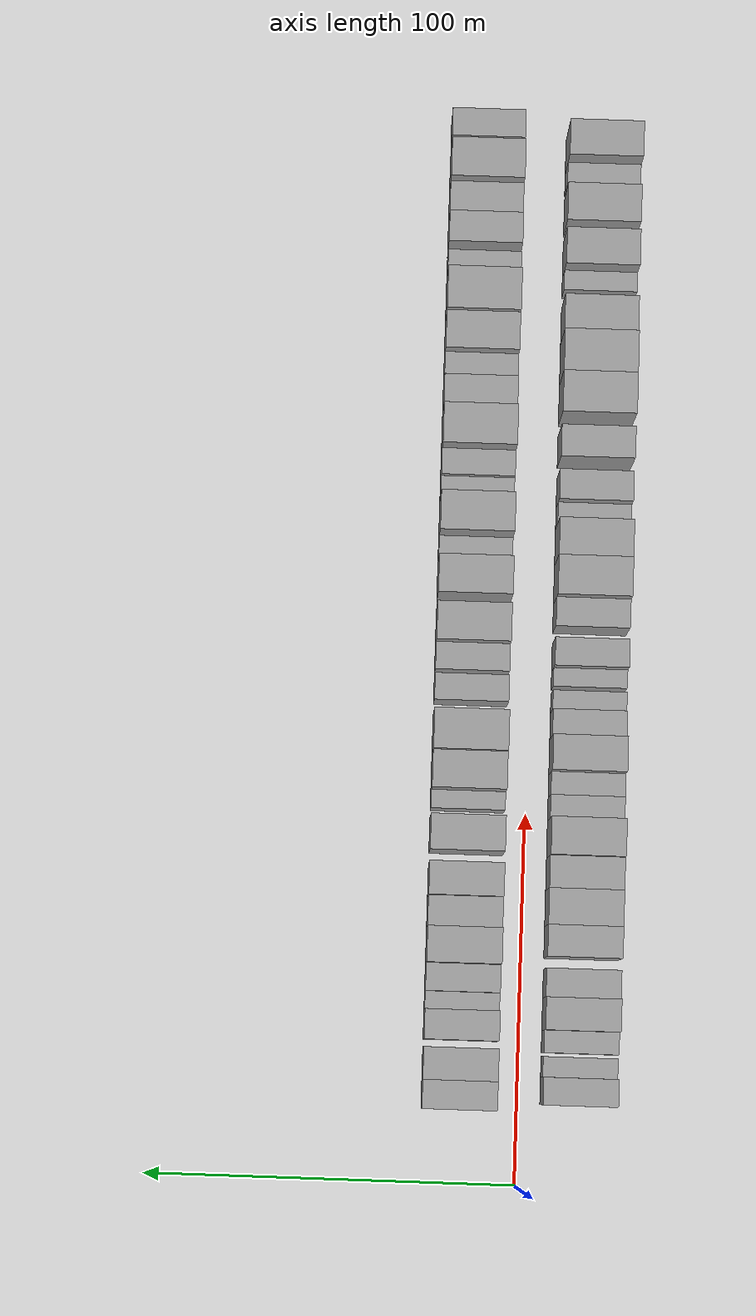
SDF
<sdf version="1.6">
 <world name="default">
  <scene>
   <sky><clouds><speed>12</speed></clouds></sky>
   <ambient>0.4 0.4 0.4 1</ambient>
   <background>0.7 0.7 0.7 1</background>
   <shadows>1</shadows>
  </scene>
  <gravity>0 0 -9.8066</gravity>
  <magnetic_field>6e-06 2.3e-05 -4.2e-05</magnetic_field>
  <physics default="0" name="default_physics" type="ode">
   <ode>
    <solver>
     <type>quick</type>
     <iters>10</iters>
     <sor>1.0</sor>
     <use_dynamic_moi_rescaling>0</use_dynamic_moi_rescaling>
    </solver>
    <constraints>
     <cfm>0</cfm>
     <erp>0.2</erp>
     <contact_max_correcting_vel>100</contact_max_correcting_vel>
     <contact_surface_layer>0.001</contact_surface_layer>
    </constraints>
   </ode>
   <max_step_size>0.004</max_step_size>
   <real_time_factor>1</real_time_factor>
   <real_time_update_rate>250</real_time_update_rate>
  </physics>
  <light name="sun" type="directional">
   <pose>0 0 10 0 0 0</pose>
   <diffuse>0.8 0.8 0.8 1</diffuse>
   <specular>0.2 0.2 0.2 1</specular>
   <attenuation>
    <range>1000</range>
    <constant>0.9</constant>
    <linear>0.01</linear>
    <quadratic>0.001</quadratic>
   </attenuation>
   <direction>-0.5 0.1 -0.9</direction>
  </light>
  <model name="building_1">
   <static>1</static>
   <pose>23.8526 16.0000 0 0.000000 0.000000 1.570796</pose>
   <link name="link">
    <pose>0 0 9.00 0 0 0</pose>
    <collision name="collision"><geometry><box><size>20.0000 7.7052 18.0000</size></box></geometry></collision>
    <visual name="visual">
     <cast_shadows>0</cast_shadows>
     <geometry><box><size>20.0000 7.7052 18.0000</size></box></geometry>
     <material>
      <script>
       <uri>model://grey_wall/materials/scripts</uri>
       <uri>model://grey_wall/materials/textures</uri>
       <name>vrc/grey_wall</name>
      </script>
     </material>
    </visual>
   </link>
  </model>
  <model name="building_2">
   <static>1</static>
   <pose>32.0333 16.0000 0 0.000000 0.000000 1.570796</pose>
   <link name="link">
    <pose>0 0 9.00 0 0 0</pose>
    <collision name="collision"><geometry><box><size>20.0000 8.6563 18.0000</size></box></geometry></collision>
    <visual name="visual">
     <cast_shadows>0</cast_shadows>
     <geometry><box><size>20.0000 8.6563 18.0000</size></box></geometry>
     <material>
      <script>
       <uri>model://grey_wall/materials/scripts</uri>
       <uri>model://grey_wall/materials/textures</uri>
       <name>vrc/grey_wall</name>
      </script>
     </material>
    </visual>
   </link>
  </model>
  <model name="building_3">
   <static>1</static>
   <pose>42.3882 16.0000 0 0.000000 0.000000 1.570796</pose>
   <link name="link">
    <pose>0 0 9.00 0 0 0</pose>
    <collision name="collision"><geometry><box><size>20.0000 8.0535 18.0000</size></box></geometry></collision>
    <visual name="visual">
     <cast_shadows>0</cast_shadows>
     <geometry><box><size>20.0000 8.0535 18.0000</size></box></geometry>
     <material>
      <script>
       <uri>model://grey_wall/materials/scripts</uri>
       <uri>model://grey_wall/materials/textures</uri>
       <name>vrc/grey_wall</name>
      </script>
     </material>
    </visual>
   </link>
  </model>
  <model name="building_4">
   <static>1</static>
   <pose>48.8194 16.0000 0 0.000000 0.000000 1.570796</pose>
   <link name="link">
    <pose>0 0 6.00 0 0 0</pose>
    <collision name="collision"><geometry><box><size>20.0000 4.8088 12.0000</size></box></geometry></collision>
    <visual name="visual">
     <cast_shadows>0</cast_shadows>
     <geometry><box><size>20.0000 4.8088 12.0000</size></box></geometry>
     <material>
      <script>
       <uri>model://grey_wall/materials/scripts</uri>
       <uri>model://grey_wall/materials/textures</uri>
       <name>vrc/grey_wall</name>
      </script>
     </material>
    </visual>
   </link>
  </model>
  <model name="building_5">
   <static>1</static>
   <pose>54.9611 16.0000 0 0.000000 0.000000 1.570796</pose>
   <link name="link">
    <pose>0 0 7.50 0 0 0</pose>
    <collision name="collision"><geometry><box><size>20.0000 7.4746 15.0000</size></box></geometry></collision>
    <visual name="visual">
     <cast_shadows>0</cast_shadows>
     <geometry><box><size>20.0000 7.4746 15.0000</size></box></geometry>
     <material>
      <script>
       <uri>model://grey_wall/materials/scripts</uri>
       <uri>model://grey_wall/materials/textures</uri>
       <name>vrc/grey_wall</name>
      </script>
     </material>
    </visual>
   </link>
  </model>
  <model name="building_6">
   <static>1</static>
   <pose>63.5316 16.0000 0 0.000000 0.000000 1.570796</pose>
   <link name="link">
    <pose>0 0 10.50 0 0 0</pose>
    <collision name="collision"><geometry><box><size>20.0000 9.6665 21.0000</size></box></geometry></collision>
    <visual name="visual">
     <cast_shadows>0</cast_shadows>
     <geometry><box><size>20.0000 9.6665 21.0000</size></box></geometry>
     <material>
      <script>
       <uri>model://grey_wall/materials/scripts</uri>
       <uri>model://grey_wall/materials/textures</uri>
       <name>vrc/grey_wall</name>
      </script>
     </material>
    </visual>
   </link>
  </model>
  <model name="building_7">
   <static>1</static>
   <pose>72.4871 16.0000 0 0.000000 0.000000 1.570796</pose>
   <link name="link">
    <pose>0 0 9.00 0 0 0</pose>
    <collision name="collision"><geometry><box><size>20.0000 8.2445 18.0000</size></box></geometry></collision>
    <visual name="visual">
     <cast_shadows>0</cast_shadows>
     <geometry><box><size>20.0000 8.2445 18.0000</size></box></geometry>
     <material>
      <script>
       <uri>model://grey_wall/materials/scripts</uri>
       <uri>model://grey_wall/materials/textures</uri>
       <name>vrc/grey_wall</name>
      </script>
     </material>
    </visual>
   </link>
  </model>
  <model name="building_8">
   <static>1</static>
   <pose>81.1194 16.0000 0 0.000000 0.000000 1.570796</pose>
   <link name="link">
    <pose>0 0 10.50 0 0 0</pose>
    <collision name="collision"><geometry><box><size>20.0000 9.0199 21.0000</size></box></geometry></collision>
    <visual name="visual">
     <cast_shadows>0</cast_shadows>
     <geometry><box><size>20.0000 9.0199 21.0000</size></box></geometry>
     <material>
      <script>
       <uri>model://grey_wall/materials/scripts</uri>
       <uri>model://grey_wall/materials/textures</uri>
       <name>vrc/grey_wall</name>
      </script>
     </material>
    </visual>
   </link>
  </model>
  <model name="building_9">
   <static>1</static>
   <pose>93.4221 16.0000 0 0.000000 0.000000 1.570796</pose>
   <link name="link">
    <pose>0 0 10.50 0 0 0</pose>
    <collision name="collision"><geometry><box><size>20.0000 9.5856 21.0000</size></box></geometry></collision>
    <visual name="visual">
     <cast_shadows>0</cast_shadows>
     <geometry><box><size>20.0000 9.5856 21.0000</size></box></geometry>
     <material>
      <script>
       <uri>model://grey_wall/materials/scripts</uri>
       <uri>model://grey_wall/materials/textures</uri>
       <name>vrc/grey_wall</name>
      </script>
     </material>
    </visual>
   </link>
  </model>
  <model name="building_10">
   <static>1</static>
   <pose>102.7035 16.0000 0 0.000000 0.000000 1.570796</pose>
   <link name="link">
    <pose>0 0 6.00 0 0 0</pose>
    <collision name="collision"><geometry><box><size>20.0000 4.9772 12.0000</size></box></geometry></collision>
    <visual name="visual">
     <cast_shadows>0</cast_shadows>
     <geometry><box><size>20.0000 4.9772 12.0000</size></box></geometry>
     <material>
      <script>
       <uri>model://grey_wall/materials/scripts</uri>
       <uri>model://grey_wall/materials/textures</uri>
       <name>vrc/grey_wall</name>
      </script>
     </material>
    </visual>
   </link>
  </model>
  <model name="building_11">
   <static>1</static>
   <pose>110.2626 16.0000 0 0.000000 0.000000 1.570796</pose>
   <link name="link">
    <pose>0 0 10.50 0 0 0</pose>
    <collision name="collision"><geometry><box><size>20.0000 10.1409 21.0000</size></box></geometry></collision>
    <visual name="visual">
     <cast_shadows>0</cast_shadows>
     <geometry><box><size>20.0000 10.1409 21.0000</size></box></geometry>
     <material>
      <script>
       <uri>model://grey_wall/materials/scripts</uri>
       <uri>model://grey_wall/materials/textures</uri>
       <name>vrc/grey_wall</name>
      </script>
     </material>
    </visual>
   </link>
  </model>
  <model name="building_12">
   <static>1</static>
   <pose>120.8121 16.0000 0 0.000000 0.000000 1.570796</pose>
   <link name="link">
    <pose>0 0 12.00 0 0 0</pose>
    <collision name="collision"><geometry><box><size>20.0000 10.9581 24.0000</size></box></geometry></collision>
    <visual name="visual">
     <cast_shadows>0</cast_shadows>
     <geometry><box><size>20.0000 10.9581 24.0000</size></box></geometry>
     <material>
      <script>
       <uri>model://grey_wall/materials/scripts</uri>
       <uri>model://grey_wall/materials/textures</uri>
       <name>vrc/grey_wall</name>
      </script>
     </material>
    </visual>
   </link>
  </model>
  <model name="building_13">
   <static>1</static>
   <pose>132.9128 16.0000 0 0.000000 0.000000 1.570796</pose>
   <link name="link">
    <pose>0 0 7.50 0 0 0</pose>
    <collision name="collision"><geometry><box><size>20.0000 7.2433 15.0000</size></box></geometry></collision>
    <visual name="visual">
     <cast_shadows>0</cast_shadows>
     <geometry><box><size>20.0000 7.2433 15.0000</size></box></geometry>
     <material>
      <script>
       <uri>model://grey_wall/materials/scripts</uri>
       <uri>model://grey_wall/materials/textures</uri>
       <name>vrc/grey_wall</name>
      </script>
     </material>
    </visual>
   </link>
  </model>
  <model name="building_14">
   <static>1</static>
   <pose>141.2536 16.0000 0 0.000000 0.000000 1.570796</pose>
   <link name="link">
    <pose>0 0 7.50 0 0 0</pose>
    <collision name="collision"><geometry><box><size>20.0000 7.4382 15.0000</size></box></geometry></collision>
    <visual name="visual">
     <cast_shadows>0</cast_shadows>
     <geometry><box><size>20.0000 7.4382 15.0000</size></box></geometry>
     <material>
      <script>
       <uri>model://grey_wall/materials/scripts</uri>
       <uri>model://grey_wall/materials/textures</uri>
       <name>vrc/grey_wall</name>
      </script>
     </material>
    </visual>
   </link>
  </model>
  <model name="building_15">
   <static>1</static>
   <pose>150.1657 16.0000 0 0.000000 0.000000 1.570796</pose>
   <link name="link">
    <pose>0 0 10.50 0 0 0</pose>
    <collision name="collision"><geometry><box><size>20.0000 10.3860 21.0000</size></box></geometry></collision>
    <visual name="visual">
     <cast_shadows>0</cast_shadows>
     <geometry><box><size>20.0000 10.3860 21.0000</size></box></geometry>
     <material>
      <script>
       <uri>model://grey_wall/materials/scripts</uri>
       <uri>model://grey_wall/materials/textures</uri>
       <name>vrc/grey_wall</name>
      </script>
     </material>
    </visual>
   </link>
  </model>
  <model name="building_16">
   <static>1</static>
   <pose>162.5402 16.0000 0 0.000000 0.000000 1.570796</pose>
   <link name="link">
    <pose>0 0 12.00 0 0 0</pose>
    <collision name="collision"><geometry><box><size>20.0000 10.3630 24.0000</size></box></geometry></collision>
    <visual name="visual">
     <cast_shadows>0</cast_shadows>
     <geometry><box><size>20.0000 10.3630 24.0000</size></box></geometry>
     <material>
      <script>
       <uri>model://grey_wall/materials/scripts</uri>
       <uri>model://grey_wall/materials/textures</uri>
       <name>vrc/grey_wall</name>
      </script>
     </material>
    </visual>
   </link>
  </model>
  <model name="building_17">
   <static>1</static>
   <pose>171.5231 16.0000 0 0.000000 0.000000 1.570796</pose>
   <link name="link">
    <pose>0 0 6.00 0 0 0</pose>
    <collision name="collision"><geometry><box><size>20.0000 5.6028 12.0000</size></box></geometry></collision>
    <visual name="visual">
     <cast_shadows>0</cast_shadows>
     <geometry><box><size>20.0000 5.6028 12.0000</size></box></geometry>
     <material>
      <script>
       <uri>model://grey_wall/materials/scripts</uri>
       <uri>model://grey_wall/materials/textures</uri>
       <name>vrc/grey_wall</name>
      </script>
     </material>
    </visual>
   </link>
  </model>
  <model name="building_18">
   <static>1</static>
   <pose>179.6809 16.0000 0 0.000000 0.000000 1.570796</pose>
   <link name="link">
    <pose>0 0 12.00 0 0 0</pose>
    <collision name="collision"><geometry><box><size>20.0000 10.7129 24.0000</size></box></geometry></collision>
    <visual name="visual">
     <cast_shadows>0</cast_shadows>
     <geometry><box><size>20.0000 10.7129 24.0000</size></box></geometry>
     <material>
      <script>
       <uri>model://grey_wall/materials/scripts</uri>
       <uri>model://grey_wall/materials/textures</uri>
       <name>vrc/grey_wall</name>
      </script>
     </material>
    </visual>
   </link>
  </model>
  <model name="building_19">
   <static>1</static>
   <pose>187.9034 16.0000 0 0.000000 0.000000 1.570796</pose>
   <link name="link">
    <pose>0 0 6.00 0 0 0</pose>
    <collision name="collision"><geometry><box><size>20.0000 5.7320 12.0000</size></box></geometry></collision>
    <visual name="visual">
     <cast_shadows>0</cast_shadows>
     <geometry><box><size>20.0000 5.7320 12.0000</size></box></geometry>
     <material>
      <script>
       <uri>model://grey_wall/materials/scripts</uri>
       <uri>model://grey_wall/materials/textures</uri>
       <name>vrc/grey_wall</name>
      </script>
     </material>
    </visual>
   </link>
  </model>
  <model name="building_20">
   <static>1</static>
   <pose>194.3433 16.0000 0 0.000000 0.000000 1.570796</pose>
   <link name="link">
    <pose>0 0 7.50 0 0 0</pose>
    <collision name="collision"><geometry><box><size>20.0000 7.1477 15.0000</size></box></geometry></collision>
    <visual name="visual">
     <cast_shadows>0</cast_shadows>
     <geometry><box><size>20.0000 7.1477 15.0000</size></box></geometry>
     <material>
      <script>
       <uri>model://grey_wall/materials/scripts</uri>
       <uri>model://grey_wall/materials/textures</uri>
       <name>vrc/grey_wall</name>
      </script>
     </material>
    </visual>
   </link>
  </model>
  <model name="building_21">
   <static>1</static>
   <pose>203.4405 16.0000 0 0.000000 0.000000 1.570796</pose>
   <link name="link">
    <pose>0 0 12.00 0 0 0</pose>
    <collision name="collision"><geometry><box><size>20.0000 11.0467 24.0000</size></box></geometry></collision>
    <visual name="visual">
     <cast_shadows>0</cast_shadows>
     <geometry><box><size>20.0000 11.0467 24.0000</size></box></geometry>
     <material>
      <script>
       <uri>model://grey_wall/materials/scripts</uri>
       <uri>model://grey_wall/materials/textures</uri>
       <name>vrc/grey_wall</name>
      </script>
     </material>
    </visual>
   </link>
  </model>
  <model name="building_22">
   <static>1</static>
   <pose>213.4053 16.0000 0 0.000000 0.000000 1.570796</pose>
   <link name="link">
    <pose>0 0 9.00 0 0 0</pose>
    <collision name="collision"><geometry><box><size>20.0000 8.8829 18.0000</size></box></geometry></collision>
    <visual name="visual">
     <cast_shadows>0</cast_shadows>
     <geometry><box><size>20.0000 8.8829 18.0000</size></box></geometry>
     <material>
      <script>
       <uri>model://grey_wall/materials/scripts</uri>
       <uri>model://grey_wall/materials/textures</uri>
       <name>vrc/grey_wall</name>
      </script>
     </material>
    </visual>
   </link>
  </model>
  <model name="building_23">
   <static>1</static>
   <pose>221.1736 16.0000 0 0.000000 0.000000 1.570796</pose>
   <link name="link">
    <pose>0 0 7.50 0 0 0</pose>
    <collision name="collision"><geometry><box><size>20.0000 6.6537 15.0000</size></box></geometry></collision>
    <visual name="visual">
     <cast_shadows>0</cast_shadows>
     <geometry><box><size>20.0000 6.6537 15.0000</size></box></geometry>
     <material>
      <script>
       <uri>model://grey_wall/materials/scripts</uri>
       <uri>model://grey_wall/materials/textures</uri>
       <name>vrc/grey_wall</name>
      </script>
     </material>
    </visual>
   </link>
  </model>
  <model name="building_24">
   <static>1</static>
   <pose>229.6702 16.0000 0 0.000000 0.000000 1.570796</pose>
   <link name="link">
    <pose>0 0 10.50 0 0 0</pose>
    <collision name="collision"><geometry><box><size>20.0000 10.3395 21.0000</size></box></geometry></collision>
    <visual name="visual">
     <cast_shadows>0</cast_shadows>
     <geometry><box><size>20.0000 10.3395 21.0000</size></box></geometry>
     <material>
      <script>
       <uri>model://grey_wall/materials/scripts</uri>
       <uri>model://grey_wall/materials/textures</uri>
       <name>vrc/grey_wall</name>
      </script>
     </material>
    </visual>
   </link>
  </model>
  <model name="building_25">
   <static>1</static>
   <pose>240.6604 16.0000 0 0.000000 0.000000 1.570796</pose>
   <link name="link">
    <pose>0 0 12.00 0 0 0</pose>
    <collision name="collision"><geometry><box><size>20.0000 11.6411 24.0000</size></box></geometry></collision>
    <visual name="visual">
     <cast_shadows>0</cast_shadows>
     <geometry><box><size>20.0000 11.6411 24.0000</size></box></geometry>
     <material>
      <script>
       <uri>model://grey_wall/materials/scripts</uri>
       <uri>model://grey_wall/materials/textures</uri>
       <name>vrc/grey_wall</name>
      </script>
     </material>
    </visual>
   </link>
  </model>
  <model name="building_26">
   <static>1</static>
   <pose>249.7132 16.0000 0 0.000000 0.000000 1.570796</pose>
   <link name="link">
    <pose>0 0 7.50 0 0 0</pose>
    <collision name="collision"><geometry><box><size>20.0000 6.4644 15.0000</size></box></geometry></collision>
    <visual name="visual">
     <cast_shadows>0</cast_shadows>
     <geometry><box><size>20.0000 6.4644 15.0000</size></box></geometry>
     <material>
      <script>
       <uri>model://grey_wall/materials/scripts</uri>
       <uri>model://grey_wall/materials/textures</uri>
       <name>vrc/grey_wall</name>
      </script>
     </material>
    </visual>
   </link>
  </model>
  <model name="building_27">
   <static>1</static>
   <pose>258.1947 16.0000 0 0.000000 0.000000 1.570796</pose>
   <link name="link">
    <pose>0 0 10.50 0 0 0</pose>
    <collision name="collision"><geometry><box><size>20.0000 8.4985 21.0000</size></box></geometry></collision>
    <visual name="visual">
     <cast_shadows>0</cast_shadows>
     <geometry><box><size>20.0000 8.4985 21.0000</size></box></geometry>
     <material>
      <script>
       <uri>model://grey_wall/materials/scripts</uri>
       <uri>model://grey_wall/materials/textures</uri>
       <name>vrc/grey_wall</name>
      </script>
     </material>
    </visual>
   </link>
  </model>
  <model name="building_28">
   <static>1</static>
   <pose>266.8951 16.0000 0 0.000000 0.000000 1.570796</pose>
   <link name="link">
    <pose>0 0 9.00 0 0 0</pose>
    <collision name="collision"><geometry><box><size>20.0000 8.9024 18.0000</size></box></geometry></collision>
    <visual name="visual">
     <cast_shadows>0</cast_shadows>
     <geometry><box><size>20.0000 8.9024 18.0000</size></box></geometry>
     <material>
      <script>
       <uri>model://grey_wall/materials/scripts</uri>
       <uri>model://grey_wall/materials/textures</uri>
       <name>vrc/grey_wall</name>
      </script>
     </material>
    </visual>
   </link>
  </model>
  <model name="building_29">
   <static>1</static>
   <pose>276.7235 16.0000 0 0.000000 0.000000 1.570796</pose>
   <link name="link">
    <pose>0 0 12.00 0 0 0</pose>
    <collision name="collision"><geometry><box><size>20.0000 10.7544 24.0000</size></box></geometry></collision>
    <visual name="visual">
     <cast_shadows>0</cast_shadows>
     <geometry><box><size>20.0000 10.7544 24.0000</size></box></geometry>
     <material>
      <script>
       <uri>model://grey_wall/materials/scripts</uri>
       <uri>model://grey_wall/materials/textures</uri>
       <name>vrc/grey_wall</name>
      </script>
     </material>
    </visual>
   </link>
  </model>
  <model name="building_30">
   <static>1</static>
   <pose>287.9620 16.0000 0 0.000000 0.000000 1.570796</pose>
   <link name="link">
    <pose>0 0 9.00 0 0 0</pose>
    <collision name="collision"><geometry><box><size>20.0000 7.7226 18.0000</size></box></geometry></collision>
    <visual name="visual">
     <cast_shadows>0</cast_shadows>
     <geometry><box><size>20.0000 7.7226 18.0000</size></box></geometry>
     <material>
      <script>
       <uri>model://grey_wall/materials/scripts</uri>
       <uri>model://grey_wall/materials/textures</uri>
       <name>vrc/grey_wall</name>
      </script>
     </material>
    </visual>
   </link>
  </model>
  <model name="building_31">
   <static>1</static>
   <pose>25.6830 -16.0000 0 0.000000 0.000000 1.570796</pose>
   <link name="link">
    <pose>0 0 9.00 0 0 0</pose>
    <collision name="collision"><geometry><box><size>20.0000 7.3660 18.0000</size></box></geometry></collision>
    <visual name="visual">
     <cast_shadows>0</cast_shadows>
     <geometry><box><size>20.0000 7.3660 18.0000</size></box></geometry>
     <material>
      <script>
       <uri>model://grey_wall/materials/scripts</uri>
       <uri>model://grey_wall/materials/textures</uri>
       <name>vrc/grey_wall</name>
      </script>
     </material>
    </visual>
   </link>
  </model>
  <model name="building_32">
   <static>1</static>
   <pose>32.0870 -16.0000 0 0.000000 0.000000 1.570796</pose>
   <link name="link">
    <pose>0 0 6.00 0 0 0</pose>
    <collision name="collision"><geometry><box><size>20.0000 5.4419 12.0000</size></box></geometry></collision>
    <visual name="visual">
     <cast_shadows>0</cast_shadows>
     <geometry><box><size>20.0000 5.4419 12.0000</size></box></geometry>
     <material>
      <script>
       <uri>model://grey_wall/materials/scripts</uri>
       <uri>model://grey_wall/materials/textures</uri>
       <name>vrc/grey_wall</name>
      </script>
     </material>
    </visual>
   </link>
  </model>
  <model name="building_33">
   <static>1</static>
   <pose>38.8091 -16.0000 0 0.000000 0.000000 1.570796</pose>
   <link name="link">
    <pose>0 0 7.50 0 0 0</pose>
    <collision name="collision"><geometry><box><size>20.0000 6.0024 15.0000</size></box></geometry></collision>
    <visual name="visual">
     <cast_shadows>0</cast_shadows>
     <geometry><box><size>20.0000 6.0024 15.0000</size></box></geometry>
     <material>
      <script>
       <uri>model://grey_wall/materials/scripts</uri>
       <uri>model://grey_wall/materials/textures</uri>
       <name>vrc/grey_wall</name>
      </script>
     </material>
    </visual>
   </link>
  </model>
  <model name="building_34">
   <static>1</static>
   <pose>46.1649 -16.0000 0 0.000000 0.000000 1.570796</pose>
   <link name="link">
    <pose>0 0 10.50 0 0 0</pose>
    <collision name="collision"><geometry><box><size>20.0000 8.7093 21.0000</size></box></geometry></collision>
    <visual name="visual">
     <cast_shadows>0</cast_shadows>
     <geometry><box><size>20.0000 8.7093 21.0000</size></box></geometry>
     <material>
      <script>
       <uri>model://grey_wall/materials/scripts</uri>
       <uri>model://grey_wall/materials/textures</uri>
       <name>vrc/grey_wall</name>
      </script>
     </material>
    </visual>
   </link>
  </model>
  <model name="building_35">
   <static>1</static>
   <pose>54.3679 -16.0000 0 0.000000 0.000000 1.570796</pose>
   <link name="link">
    <pose>0 0 9.00 0 0 0</pose>
    <collision name="collision"><geometry><box><size>20.0000 7.6967 18.0000</size></box></geometry></collision>
    <visual name="visual">
     <cast_shadows>0</cast_shadows>
     <geometry><box><size>20.0000 7.6967 18.0000</size></box></geometry>
     <material>
      <script>
       <uri>model://grey_wall/materials/scripts</uri>
       <uri>model://grey_wall/materials/textures</uri>
       <name>vrc/grey_wall</name>
      </script>
     </material>
    </visual>
   </link>
  </model>
  <model name="building_36">
   <static>1</static>
   <pose>65.4536 -16.0000 0 0.000000 0.000000 1.570796</pose>
   <link name="link">
    <pose>0 0 10.50 0 0 0</pose>
    <collision name="collision"><geometry><box><size>20.0000 8.4747 21.0000</size></box></geometry></collision>
    <visual name="visual">
     <cast_shadows>0</cast_shadows>
     <geometry><box><size>20.0000 8.4747 21.0000</size></box></geometry>
     <material>
      <script>
       <uri>model://grey_wall/materials/scripts</uri>
       <uri>model://grey_wall/materials/textures</uri>
       <name>vrc/grey_wall</name>
      </script>
     </material>
    </visual>
   </link>
  </model>
  <model name="building_37">
   <static>1</static>
   <pose>74.5472 -16.0000 0 0.000000 0.000000 1.570796</pose>
   <link name="link">
    <pose>0 0 10.50 0 0 0</pose>
    <collision name="collision"><geometry><box><size>20.0000 9.7126 21.0000</size></box></geometry></collision>
    <visual name="visual">
     <cast_shadows>0</cast_shadows>
     <geometry><box><size>20.0000 9.7126 21.0000</size></box></geometry>
     <material>
      <script>
       <uri>model://grey_wall/materials/scripts</uri>
       <uri>model://grey_wall/materials/textures</uri>
       <name>vrc/grey_wall</name>
      </script>
     </material>
    </visual>
   </link>
  </model>
  <model name="building_38">
   <static>1</static>
   <pose>83.7526 -16.0000 0 0.000000 0.000000 1.570796</pose>
   <link name="link">
    <pose>0 0 10.50 0 0 0</pose>
    <collision name="collision"><geometry><box><size>20.0000 8.6983 21.0000</size></box></geometry></collision>
    <visual name="visual">
     <cast_shadows>0</cast_shadows>
     <geometry><box><size>20.0000 8.6983 21.0000</size></box></geometry>
     <material>
      <script>
       <uri>model://grey_wall/materials/scripts</uri>
       <uri>model://grey_wall/materials/textures</uri>
       <name>vrc/grey_wall</name>
      </script>
     </material>
    </visual>
   </link>
  </model>
  <model name="building_39">
   <static>1</static>
   <pose>93.1821 -16.0000 0 0.000000 0.000000 1.570796</pose>
   <link name="link">
    <pose>0 0 12.00 0 0 0</pose>
    <collision name="collision"><geometry><box><size>20.0000 10.1607 24.0000</size></box></geometry></collision>
    <visual name="visual">
     <cast_shadows>0</cast_shadows>
     <geometry><box><size>20.0000 10.1607 24.0000</size></box></geometry>
     <material>
      <script>
       <uri>model://grey_wall/materials/scripts</uri>
       <uri>model://grey_wall/materials/textures</uri>
       <name>vrc/grey_wall</name>
      </script>
     </material>
    </visual>
   </link>
  </model>
  <model name="building_40">
   <static>1</static>
   <pose>101.4703 -16.0000 0 0.000000 0.000000 1.570796</pose>
   <link name="link">
    <pose>0 0 7.50 0 0 0</pose>
    <collision name="collision"><geometry><box><size>20.0000 6.4156 15.0000</size></box></geometry></collision>
    <visual name="visual">
     <cast_shadows>0</cast_shadows>
     <geometry><box><size>20.0000 6.4156 15.0000</size></box></geometry>
     <material>
      <script>
       <uri>model://grey_wall/materials/scripts</uri>
       <uri>model://grey_wall/materials/textures</uri>
       <name>vrc/grey_wall</name>
      </script>
     </material>
    </visual>
   </link>
  </model>
  <model name="building_41">
   <static>1</static>
   <pose>107.7870 -16.0000 0 0.000000 0.000000 1.570796</pose>
   <link name="link">
    <pose>0 0 7.50 0 0 0</pose>
    <collision name="collision"><geometry><box><size>20.0000 6.2178 15.0000</size></box></geometry></collision>
    <visual name="visual">
     <cast_shadows>0</cast_shadows>
     <geometry><box><size>20.0000 6.2178 15.0000</size></box></geometry>
     <material>
      <script>
       <uri>model://grey_wall/materials/scripts</uri>
       <uri>model://grey_wall/materials/textures</uri>
       <name>vrc/grey_wall</name>
      </script>
     </material>
    </visual>
   </link>
  </model>
  <model name="building_42">
   <static>1</static>
   <pose>115.6761 -16.0000 0 0.000000 0.000000 1.570796</pose>
   <link name="link">
    <pose>0 0 10.50 0 0 0</pose>
    <collision name="collision"><geometry><box><size>20.0000 9.5603 21.0000</size></box></geometry></collision>
    <visual name="visual">
     <cast_shadows>0</cast_shadows>
     <geometry><box><size>20.0000 9.5603 21.0000</size></box></geometry>
     <material>
      <script>
       <uri>model://grey_wall/materials/scripts</uri>
       <uri>model://grey_wall/materials/textures</uri>
       <name>vrc/grey_wall</name>
      </script>
     </material>
    </visual>
   </link>
  </model>
  <model name="building_43">
   <static>1</static>
   <pose>124.1509 -16.0000 0 0.000000 0.000000 1.570796</pose>
   <link name="link">
    <pose>0 0 7.50 0 0 0</pose>
    <collision name="collision"><geometry><box><size>20.0000 7.3895 15.0000</size></box></geometry></collision>
    <visual name="visual">
     <cast_shadows>0</cast_shadows>
     <geometry><box><size>20.0000 7.3895 15.0000</size></box></geometry>
     <material>
      <script>
       <uri>model://grey_wall/materials/scripts</uri>
       <uri>model://grey_wall/materials/textures</uri>
       <name>vrc/grey_wall</name>
      </script>
     </material>
    </visual>
   </link>
  </model>
  <model name="building_44">
   <static>1</static>
   <pose>130.5229 -16.0000 0 0.000000 0.000000 1.570796</pose>
   <link name="link">
    <pose>0 0 6.00 0 0 0</pose>
    <collision name="collision"><geometry><box><size>20.0000 5.3545 12.0000</size></box></geometry></collision>
    <visual name="visual">
     <cast_shadows>0</cast_shadows>
     <geometry><box><size>20.0000 5.3545 12.0000</size></box></geometry>
     <material>
      <script>
       <uri>model://grey_wall/materials/scripts</uri>
       <uri>model://grey_wall/materials/textures</uri>
       <name>vrc/grey_wall</name>
      </script>
     </material>
    </visual>
   </link>
  </model>
  <model name="building_45">
   <static>1</static>
   <pose>136.7290 -16.0000 0 0.000000 0.000000 1.570796</pose>
   <link name="link">
    <pose>0 0 6.00 0 0 0</pose>
    <collision name="collision"><geometry><box><size>20.0000 5.0577 12.0000</size></box></geometry></collision>
    <visual name="visual">
     <cast_shadows>0</cast_shadows>
     <geometry><box><size>20.0000 5.0577 12.0000</size></box></geometry>
     <material>
      <script>
       <uri>model://grey_wall/materials/scripts</uri>
       <uri>model://grey_wall/materials/textures</uri>
       <name>vrc/grey_wall</name>
      </script>
     </material>
    </visual>
   </link>
  </model>
  <model name="building_46">
   <static>1</static>
   <pose>143.0899 -16.0000 0 0.000000 0.000000 1.570796</pose>
   <link name="link">
    <pose>0 0 9.00 0 0 0</pose>
    <collision name="collision"><geometry><box><size>20.0000 7.6640 18.0000</size></box></geometry></collision>
    <visual name="visual">
     <cast_shadows>0</cast_shadows>
     <geometry><box><size>20.0000 7.6640 18.0000</size></box></geometry>
     <material>
      <script>
       <uri>model://grey_wall/materials/scripts</uri>
       <uri>model://grey_wall/materials/textures</uri>
       <name>vrc/grey_wall</name>
      </script>
     </material>
    </visual>
   </link>
  </model>
  <model name="building_47">
   <static>1</static>
   <pose>153.8570 -16.0000 0 0.000000 0.000000 1.570796</pose>
   <link name="link">
    <pose>0 0 9.00 0 0 0</pose>
    <collision name="collision"><geometry><box><size>20.0000 7.8702 18.0000</size></box></geometry></collision>
    <visual name="visual">
     <cast_shadows>0</cast_shadows>
     <geometry><box><size>20.0000 7.8702 18.0000</size></box></geometry>
     <material>
      <script>
       <uri>model://grey_wall/materials/scripts</uri>
       <uri>model://grey_wall/materials/textures</uri>
       <name>vrc/grey_wall</name>
      </script>
     </material>
    </visual>
   </link>
  </model>
  <model name="building_48">
   <static>1</static>
   <pose>163.1439 -16.0000 0 0.000000 0.000000 1.570796</pose>
   <link name="link">
    <pose>0 0 12.00 0 0 0</pose>
    <collision name="collision"><geometry><box><size>20.0000 10.7037 24.0000</size></box></geometry></collision>
    <visual name="visual">
     <cast_shadows>0</cast_shadows>
     <geometry><box><size>20.0000 10.7037 24.0000</size></box></geometry>
     <material>
      <script>
       <uri>model://grey_wall/materials/scripts</uri>
       <uri>model://grey_wall/materials/textures</uri>
       <name>vrc/grey_wall</name>
      </script>
     </material>
    </visual>
   </link>
  </model>
  <model name="building_49">
   <static>1</static>
   <pose>173.5674 -16.0000 0 0.000000 0.000000 1.570796</pose>
   <link name="link">
    <pose>0 0 12.00 0 0 0</pose>
    <collision name="collision"><geometry><box><size>20.0000 10.1433 24.0000</size></box></geometry></collision>
    <visual name="visual">
     <cast_shadows>0</cast_shadows>
     <geometry><box><size>20.0000 10.1433 24.0000</size></box></geometry>
     <material>
      <script>
       <uri>model://grey_wall/materials/scripts</uri>
       <uri>model://grey_wall/materials/textures</uri>
       <name>vrc/grey_wall</name>
      </script>
     </material>
    </visual>
   </link>
  </model>
  <model name="building_50">
   <static>1</static>
   <pose>181.5880 -16.0000 0 0.000000 0.000000 1.570796</pose>
   <link name="link">
    <pose>0 0 6.00 0 0 0</pose>
    <collision name="collision"><geometry><box><size>20.0000 5.8977 12.0000</size></box></geometry></collision>
    <visual name="visual">
     <cast_shadows>0</cast_shadows>
     <geometry><box><size>20.0000 5.8977 12.0000</size></box></geometry>
     <material>
      <script>
       <uri>model://grey_wall/materials/scripts</uri>
       <uri>model://grey_wall/materials/textures</uri>
       <name>vrc/grey_wall</name>
      </script>
     </material>
    </visual>
   </link>
  </model>
  <model name="building_51">
   <static>1</static>
   <pose>188.6408 -16.0000 0 0.000000 0.000000 1.570796</pose>
   <link name="link">
    <pose>0 0 9.00 0 0 0</pose>
    <collision name="collision"><geometry><box><size>20.0000 8.2078 18.0000</size></box></geometry></collision>
    <visual name="visual">
     <cast_shadows>0</cast_shadows>
     <geometry><box><size>20.0000 8.2078 18.0000</size></box></geometry>
     <material>
      <script>
       <uri>model://grey_wall/materials/scripts</uri>
       <uri>model://grey_wall/materials/textures</uri>
       <name>vrc/grey_wall</name>
      </script>
     </material>
    </visual>
   </link>
  </model>
  <model name="building_52">
   <static>1</static>
   <pose>200.1065 -16.0000 0 0.000000 0.000000 1.570796</pose>
   <link name="link">
    <pose>0 0 10.50 0 0 0</pose>
    <collision name="collision"><geometry><box><size>20.0000 8.7236 21.0000</size></box></geometry></collision>
    <visual name="visual">
     <cast_shadows>0</cast_shadows>
     <geometry><box><size>20.0000 8.7236 21.0000</size></box></geometry>
     <material>
      <script>
       <uri>model://grey_wall/materials/scripts</uri>
       <uri>model://grey_wall/materials/textures</uri>
       <name>vrc/grey_wall</name>
      </script>
     </material>
    </visual>
   </link>
  </model>
  <model name="building_53">
   <static>1</static>
   <pose>213.1081 -16.0000 0 0.000000 0.000000 1.570796</pose>
   <link name="link">
    <pose>0 0 12.00 0 0 0</pose>
    <collision name="collision"><geometry><box><size>20.0000 11.2798 24.0000</size></box></geometry></collision>
    <visual name="visual">
     <cast_shadows>0</cast_shadows>
     <geometry><box><size>20.0000 11.2798 24.0000</size></box></geometry>
     <material>
      <script>
       <uri>model://grey_wall/materials/scripts</uri>
       <uri>model://grey_wall/materials/textures</uri>
       <name>vrc/grey_wall</name>
      </script>
     </material>
    </visual>
   </link>
  </model>
  <model name="building_54">
   <static>1</static>
   <pose>224.4947 -16.0000 0 0.000000 0.000000 1.570796</pose>
   <link name="link">
    <pose>0 0 12.00 0 0 0</pose>
    <collision name="collision"><geometry><box><size>20.0000 11.4934 24.0000</size></box></geometry></collision>
    <visual name="visual">
     <cast_shadows>0</cast_shadows>
     <geometry><box><size>20.0000 11.4934 24.0000</size></box></geometry>
     <material>
      <script>
       <uri>model://grey_wall/materials/scripts</uri>
       <uri>model://grey_wall/materials/textures</uri>
       <name>vrc/grey_wall</name>
      </script>
     </material>
    </visual>
   </link>
  </model>
  <model name="building_55">
   <static>1</static>
   <pose>235.3212 -16.0000 0 0.000000 0.000000 1.570796</pose>
   <link name="link">
    <pose>0 0 10.50 0 0 0</pose>
    <collision name="collision"><geometry><box><size>20.0000 10.1595 21.0000</size></box></geometry></collision>
    <visual name="visual">
     <cast_shadows>0</cast_shadows>
     <geometry><box><size>20.0000 10.1595 21.0000</size></box></geometry>
     <material>
      <script>
       <uri>model://grey_wall/materials/scripts</uri>
       <uri>model://grey_wall/materials/textures</uri>
       <name>vrc/grey_wall</name>
      </script>
     </material>
    </visual>
   </link>
  </model>
  <model name="building_56">
   <static>1</static>
   <pose>246.1202 -16.0000 0 0.000000 0.000000 1.570796</pose>
   <link name="link">
    <pose>0 0 6.00 0 0 0</pose>
    <collision name="collision"><geometry><box><size>20.0000 5.4384 12.0000</size></box></geometry></collision>
    <visual name="visual">
     <cast_shadows>0</cast_shadows>
     <geometry><box><size>20.0000 5.4384 12.0000</size></box></geometry>
     <material>
      <script>
       <uri>model://grey_wall/materials/scripts</uri>
       <uri>model://grey_wall/materials/textures</uri>
       <name>vrc/grey_wall</name>
      </script>
     </material>
    </visual>
   </link>
  </model>
  <model name="building_57">
   <static>1</static>
   <pose>253.8512 -16.0000 0 0.000000 0.000000 1.570796</pose>
   <link name="link">
    <pose>0 0 10.50 0 0 0</pose>
    <collision name="collision"><geometry><box><size>20.0000 10.0237 21.0000</size></box></geometry></collision>
    <visual name="visual">
     <cast_shadows>0</cast_shadows>
     <geometry><box><size>20.0000 10.0237 21.0000</size></box></geometry>
     <material>
      <script>
       <uri>model://grey_wall/materials/scripts</uri>
       <uri>model://grey_wall/materials/textures</uri>
       <name>vrc/grey_wall</name>
      </script>
     </material>
    </visual>
   </link>
  </model>
  <model name="building_58">
   <static>1</static>
   <pose>266.0695 -16.0000 0 0.000000 0.000000 1.570796</pose>
   <link name="link">
    <pose>0 0 10.50 0 0 0</pose>
    <collision name="collision"><geometry><box><size>20.0000 10.4129 21.0000</size></box></geometry></collision>
    <visual name="visual">
     <cast_shadows>0</cast_shadows>
     <geometry><box><size>20.0000 10.4129 21.0000</size></box></geometry>
     <material>
      <script>
       <uri>model://grey_wall/materials/scripts</uri>
       <uri>model://grey_wall/materials/textures</uri>
       <name>vrc/grey_wall</name>
      </script>
     </material>
    </visual>
   </link>
  </model>
  <model name="building_59">
   <static>1</static>
   <pose>275.2891 -16.0000 0 0.000000 0.000000 1.570796</pose>
   <link name="link">
    <pose>0 0 7.50 0 0 0</pose>
    <collision name="collision"><geometry><box><size>20.0000 6.0263 15.0000</size></box></geometry></collision>
    <visual name="visual">
     <cast_shadows>0</cast_shadows>
     <geometry><box><size>20.0000 6.0263 15.0000</size></box></geometry>
     <material>
      <script>
       <uri>model://grey_wall/materials/scripts</uri>
       <uri>model://grey_wall/materials/textures</uri>
       <name>vrc/grey_wall</name>
      </script>
     </material>
    </visual>
   </link>
  </model>
  <model name="building_60">
   <static>1</static>
   <pose>283.2247 -16.0000 0 0.000000 0.000000 1.570796</pose>
   <link name="link">
    <pose>0 0 12.00 0 0 0</pose>
    <collision name="collision"><geometry><box><size>20.0000 9.8449 24.0000</size></box></geometry></collision>
    <visual name="visual">
     <cast_shadows>0</cast_shadows>
     <geometry><box><size>20.0000 9.8449 24.0000</size></box></geometry>
     <material>
      <script>
       <uri>model://grey_wall/materials/scripts</uri>
       <uri>model://grey_wall/materials/textures</uri>
       <name>vrc/grey_wall</name>
      </script>
     </material>
    </visual>
   </link>
  </model>
 </world>
</sdf>
